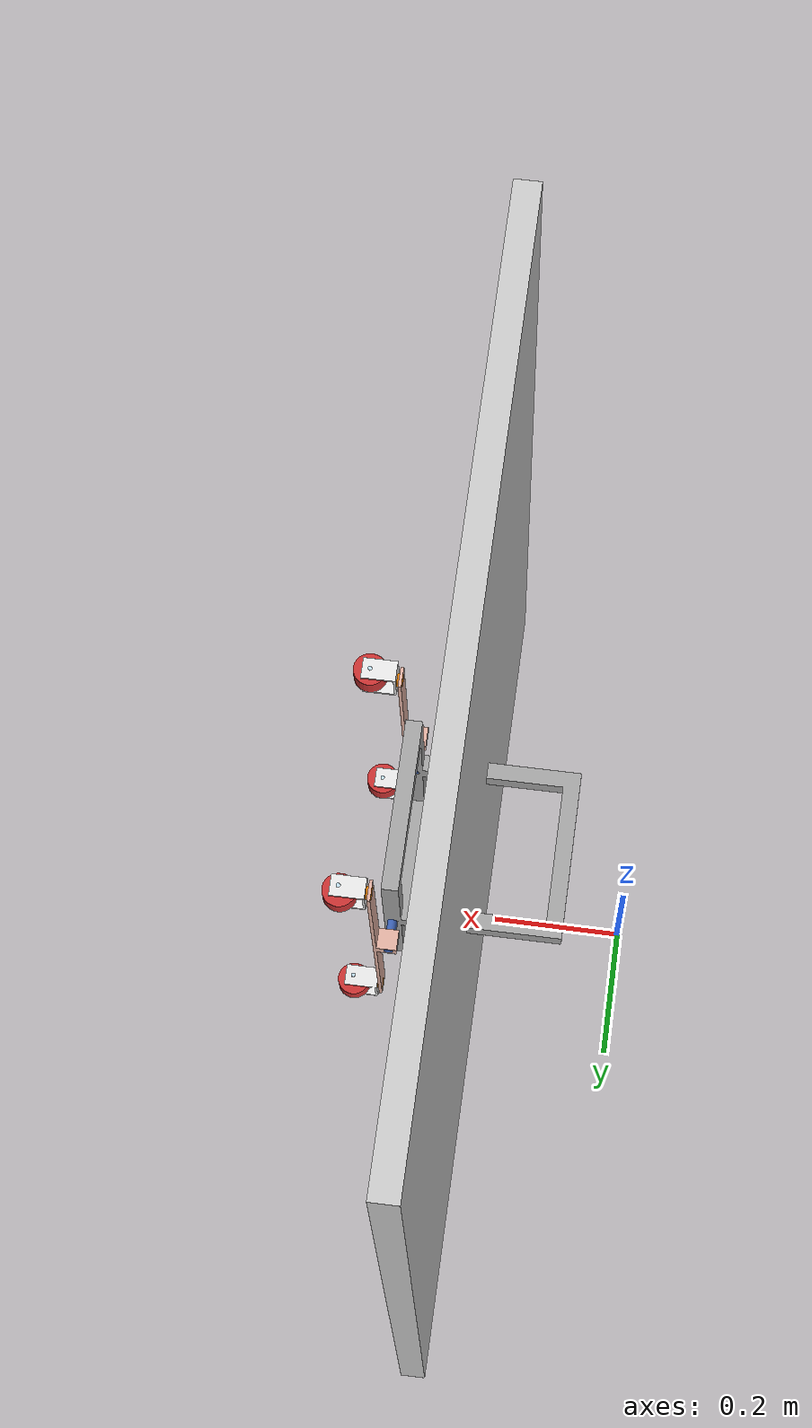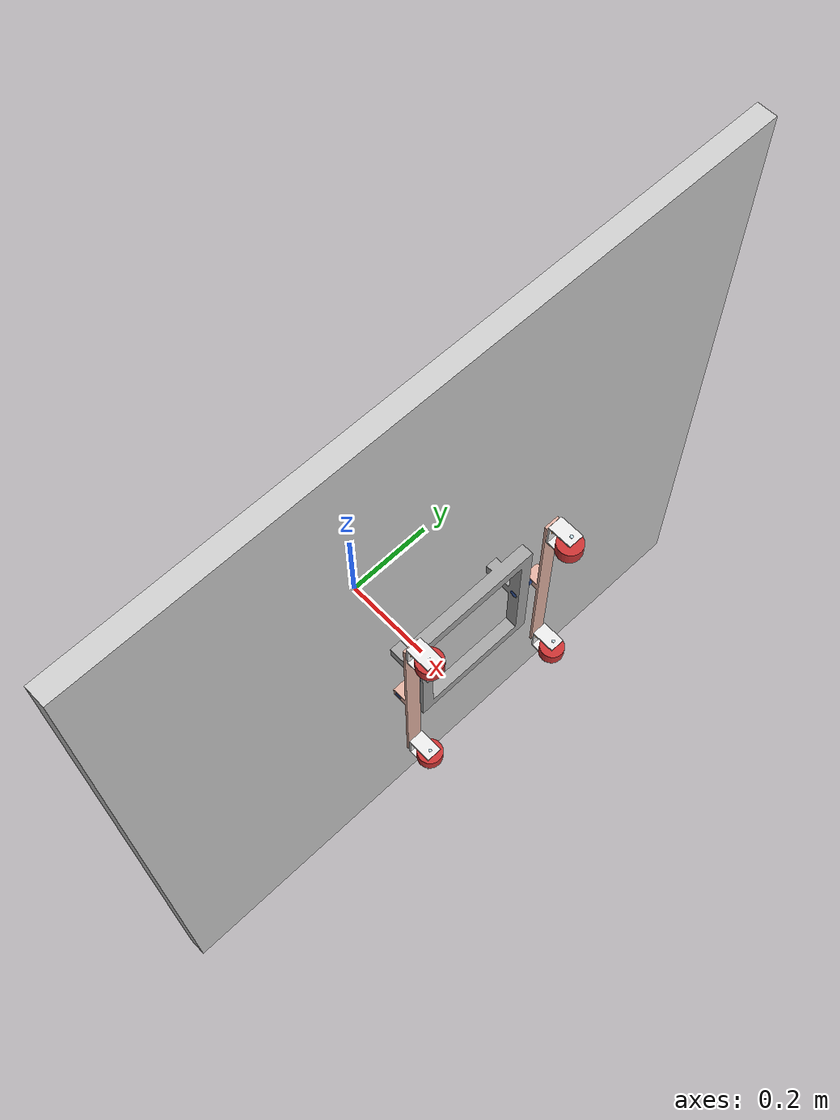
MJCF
<?xml version='1.0' encoding='utf-8'?>
<mujoco model="sally_mjcf">
  <compiler angle="radian" meshdir="assets" autolimits="true" />
  <option integrator="implicit" gravity="0 0 -9.81" cone="elliptic" impratio="10" noslip_iterations="15" />
  <default>
    <geom condim="6" contype="1" conaffinity="1" />
  </default>
  <compiler angle="radian" meshdir="assets" autolimits="true" />
  <default>

  </default>
  <worldbody>
    <body name="magnetic_wall" pos="0.25 0 0.35">
      <geom name="wall_geom" type="box" size="0.02 0.7 0.7" rgba="0.8 0.8 0.8 1" friction="0.95 0.1 0.1" contype="1" conaffinity="1" />
    </body>
    <light pos="0 0 2" dir="0 0 -1" directional="true" diffuse="0.8 0.8 0.8" />
    <body name="frame" pos="0.24 0 0.35" quat="0 -0.7071 0 0.7071">
      <freejoint />
      <geom mass="1.418814" type="mesh" pos="0.0180739 0.00440379 -0.0885384" quat="6.64008e-06 -7.24299e-06 1 -1.68313e-05" mesh="frame" material="frame_material" />
      <body name="frame_linkage" pos="0.0180761 -0.139947 -0.101144" quat="0.707094 -0.707118 -0.00101616 -0.00100588">
        <joint axis="0 0 1" name="right_hinge" type="hinge" stiffness="30.0" damping="1.0" />
        <geom mass="0.07" type="mesh" pos="-3.46945e-18 0 0.0365" quat="0.707107 0.707107 0 1.5761e-19" mesh="frame_linkage" material="frame_linkage_material" />
        <geom mass="0.3" type="mesh" pos="-1.38778e-17 0.02276 -0.020625" quat="0.5 0.5 0.5 -0.5" mesh="rocker" material="rocker_material" />
        <body name="rocker_linkage" pos="-0.2166 0.018 -0.020625" quat="0.000000 0.000000 0.707107 0.707107">
          <joint axis="0 0 1" name="BR_pivot" type="hinge" stiffness="30.0" damping="1.0" />
          <geom mass="0.15" type="mesh" pos="-0.00559823 0.000140783 0.05862" quat="3.31439e-16 0.698162 -0.71594 -6.15131e-17" mesh="wheel_holder" material="wheel_holder_material" />
          <geom mass="0.07" type="mesh" pos="-2.77556e-17 5.55112e-17 0.011" quat="9.09876e-17 -0.698162 0.71594 5.21112e-16" mesh="rocker_linkage" material="rocker_linkage_material" />
          <body name="wheel_linkage" pos="-0.0309912 0.000739345 0.04662" quat="0.184652 0.677713 -0.201753 -0.682571">
            <joint axis="0 0 1" name="BR_wheel" damping="0.1" />
            <geom mass="0.08" type="mesh" pos="0 0 0" quat="0.707107 0.707107 0 -4.01208e-18" mesh="wheel_linkage" material="wheel_linkage_material" />
            <body name="BR_wheel_geom" pos="0 0 -0.0165">
              <geom name="BR_cyl" type="cylinder" size="0.025 0.013" rgba="0.8 0.2 0.2 1" contype="1" conaffinity="1" friction="0.95 0.01 0.01" />
              <geom type="sphere" size="0.002" pos="0.022000 0.000000 0.010500" rgba="0 0 1 1" contype="0" conaffinity="0" friction="0.1 0.1 0.1" mass="1e-6" />
              <geom type="sphere" size="0.002" pos="0.015556 0.015556 0.010500" rgba="0 0 1 1" contype="0" conaffinity="0" friction="0.1 0.1 0.1" mass="1e-6" />
              <geom type="sphere" size="0.002" pos="0.000000 0.022000 0.010500" rgba="0 0 1 1" contype="0" conaffinity="0" friction="0.1 0.1 0.1" mass="1e-6" />
              <geom type="sphere" size="0.002" pos="-0.015556 0.015556 0.010500" rgba="0 0 1 1" contype="0" conaffinity="0" friction="0.1 0.1 0.1" mass="1e-6" />
              <geom type="sphere" size="0.002" pos="-0.022000 0.000000 0.010500" rgba="0 0 1 1" contype="0" conaffinity="0" friction="0.1 0.1 0.1" mass="1e-6" />
              <geom type="sphere" size="0.002" pos="-0.015556 -0.015556 0.010500" rgba="0 0 1 1" contype="0" conaffinity="0" friction="0.1 0.1 0.1" mass="1e-6" />
              <geom type="sphere" size="0.002" pos="-0.000000 -0.022000 0.010500" rgba="0 0 1 1" contype="0" conaffinity="0" friction="0.1 0.1 0.1" mass="1e-6" />
              <geom type="sphere" size="0.002" pos="0.015556 -0.015556 0.010500" rgba="0 0 1 1" contype="0" conaffinity="0" friction="0.1 0.1 0.1" mass="1e-6" />
              <geom type="sphere" size="0.002" pos="0.022000 0.000000 0.000000" rgba="0 0 1 1" contype="0" conaffinity="0" friction="0.1 0.1 0.1" mass="1e-6" />
              <geom type="sphere" size="0.002" pos="0.015556 0.015556 0.000000" rgba="0 0 1 1" contype="0" conaffinity="0" friction="0.1 0.1 0.1" mass="1e-6" />
              <geom type="sphere" size="0.002" pos="0.000000 0.022000 0.000000" rgba="0 0 1 1" contype="0" conaffinity="0" friction="0.1 0.1 0.1" mass="1e-6" />
              <geom type="sphere" size="0.002" pos="-0.015556 0.015556 0.000000" rgba="0 0 1 1" contype="0" conaffinity="0" friction="0.1 0.1 0.1" mass="1e-6" />
              <geom type="sphere" size="0.002" pos="-0.022000 0.000000 0.000000" rgba="0 0 1 1" contype="0" conaffinity="0" friction="0.1 0.1 0.1" mass="1e-6" />
              <geom type="sphere" size="0.002" pos="-0.015556 -0.015556 0.000000" rgba="0 0 1 1" contype="0" conaffinity="0" friction="0.1 0.1 0.1" mass="1e-6" />
              <geom type="sphere" size="0.002" pos="-0.000000 -0.022000 0.000000" rgba="0 0 1 1" contype="0" conaffinity="0" friction="0.1 0.1 0.1" mass="1e-6" />
              <geom type="sphere" size="0.002" pos="0.015556 -0.015556 0.000000" rgba="0 0 1 1" contype="0" conaffinity="0" friction="0.1 0.1 0.1" mass="1e-6" />
              <geom type="sphere" size="0.002" pos="0.022000 0.000000 -0.010500" rgba="0 0 1 1" contype="0" conaffinity="0" friction="0.1 0.1 0.1" mass="1e-6" />
              <geom type="sphere" size="0.002" pos="0.015556 0.015556 -0.010500" rgba="0 0 1 1" contype="0" conaffinity="0" friction="0.1 0.1 0.1" mass="1e-6" />
              <geom type="sphere" size="0.002" pos="0.000000 0.022000 -0.010500" rgba="0 0 1 1" contype="0" conaffinity="0" friction="0.1 0.1 0.1" mass="1e-6" />
              <geom type="sphere" size="0.002" pos="-0.015556 0.015556 -0.010500" rgba="0 0 1 1" contype="0" conaffinity="0" friction="0.1 0.1 0.1" mass="1e-6" />
              <geom type="sphere" size="0.002" pos="-0.022000 0.000000 -0.010500" rgba="0 0 1 1" contype="0" conaffinity="0" friction="0.1 0.1 0.1" mass="1e-6" />
              <geom type="sphere" size="0.002" pos="-0.015556 -0.015556 -0.010500" rgba="0 0 1 1" contype="0" conaffinity="0" friction="0.1 0.1 0.1" mass="1e-6" />
              <geom type="sphere" size="0.002" pos="-0.000000 -0.022000 -0.010500" rgba="0 0 1 1" contype="0" conaffinity="0" friction="0.1 0.1 0.1" mass="1e-6" />
              <geom type="sphere" size="0.002" pos="0.015556 -0.015556 -0.010500" rgba="0 0 1 1" contype="0" conaffinity="0" friction="0.1 0.1 0.1" mass="1e-6" />
            </body>
          </body>
        </body>
        <body name="rocker_linkage_2" pos="0.2166 0.018 -0.020625" quat="0.000000 0.000000 0.707107 0.707107">
          <joint axis="0 0 1" name="FR_pivot" type="hinge" stiffness="30.0" damping="1.0" />
          <geom mass="0.07" type="mesh" pos="2.77556e-17 0 0.011" quat="2.86822e-16 -0.693382 0.72057 1.85896e-16" mesh="rocker_linkage" material="rocker_linkage_material" />
          <geom mass="0.15" type="mesh" pos="-0.00559586 0.000215279 0.05862" quat="2.86822e-16 -0.693382 0.72057 1.85896e-16" mesh="wheel_holder" material="wheel_holder_material" />
          <body name="wheel_linkage_2" pos="-0.0309786 0.00115175 0.04662" quat="0.333211 0.610404 -0.356941 -0.623675">
            <joint axis="0 0 1" name="FR_wheel" damping="0.1" />
            <geom mass="0.08" type="mesh" pos="2.77556e-17 0 0" quat="0.707107 0.707107 0 1.2503e-17" mesh="wheel_linkage" material="wheel_linkage_material" />
            <body name="FR_wheel_geom" pos="0 0 -0.0165">
              <geom name="FR_cyl" type="cylinder" size="0.025 0.013" rgba="0.8 0.2 0.2 1" contype="1" conaffinity="1" friction="0.95 0.01 0.01" />
              <geom type="sphere" size="0.002" pos="0.022000 0.000000 0.010500" rgba="0 0 1 1" contype="0" conaffinity="0" friction="0.1 0.1 0.1" mass="1e-6" />
              <geom type="sphere" size="0.002" pos="0.015556 0.015556 0.010500" rgba="0 0 1 1" contype="0" conaffinity="0" friction="0.1 0.1 0.1" mass="1e-6" />
              <geom type="sphere" size="0.002" pos="0.000000 0.022000 0.010500" rgba="0 0 1 1" contype="0" conaffinity="0" friction="0.1 0.1 0.1" mass="1e-6" />
              <geom type="sphere" size="0.002" pos="-0.015556 0.015556 0.010500" rgba="0 0 1 1" contype="0" conaffinity="0" friction="0.1 0.1 0.1" mass="1e-6" />
              <geom type="sphere" size="0.002" pos="-0.022000 0.000000 0.010500" rgba="0 0 1 1" contype="0" conaffinity="0" friction="0.1 0.1 0.1" mass="1e-6" />
              <geom type="sphere" size="0.002" pos="-0.015556 -0.015556 0.010500" rgba="0 0 1 1" contype="0" conaffinity="0" friction="0.1 0.1 0.1" mass="1e-6" />
              <geom type="sphere" size="0.002" pos="-0.000000 -0.022000 0.010500" rgba="0 0 1 1" contype="0" conaffinity="0" friction="0.1 0.1 0.1" mass="1e-6" />
              <geom type="sphere" size="0.002" pos="0.015556 -0.015556 0.010500" rgba="0 0 1 1" contype="0" conaffinity="0" friction="0.1 0.1 0.1" mass="1e-6" />
              <geom type="sphere" size="0.002" pos="0.022000 0.000000 0.000000" rgba="0 0 1 1" contype="0" conaffinity="0" friction="0.1 0.1 0.1" mass="1e-6" />
              <geom type="sphere" size="0.002" pos="0.015556 0.015556 0.000000" rgba="0 0 1 1" contype="0" conaffinity="0" friction="0.1 0.1 0.1" mass="1e-6" />
              <geom type="sphere" size="0.002" pos="0.000000 0.022000 0.000000" rgba="0 0 1 1" contype="0" conaffinity="0" friction="0.1 0.1 0.1" mass="1e-6" />
              <geom type="sphere" size="0.002" pos="-0.015556 0.015556 0.000000" rgba="0 0 1 1" contype="0" conaffinity="0" friction="0.1 0.1 0.1" mass="1e-6" />
              <geom type="sphere" size="0.002" pos="-0.022000 0.000000 0.000000" rgba="0 0 1 1" contype="0" conaffinity="0" friction="0.1 0.1 0.1" mass="1e-6" />
              <geom type="sphere" size="0.002" pos="-0.015556 -0.015556 0.000000" rgba="0 0 1 1" contype="0" conaffinity="0" friction="0.1 0.1 0.1" mass="1e-6" />
              <geom type="sphere" size="0.002" pos="-0.000000 -0.022000 0.000000" rgba="0 0 1 1" contype="0" conaffinity="0" friction="0.1 0.1 0.1" mass="1e-6" />
              <geom type="sphere" size="0.002" pos="0.015556 -0.015556 0.000000" rgba="0 0 1 1" contype="0" conaffinity="0" friction="0.1 0.1 0.1" mass="1e-6" />
              <geom type="sphere" size="0.002" pos="0.022000 0.000000 -0.010500" rgba="0 0 1 1" contype="0" conaffinity="0" friction="0.1 0.1 0.1" mass="1e-6" />
              <geom type="sphere" size="0.002" pos="0.015556 0.015556 -0.010500" rgba="0 0 1 1" contype="0" conaffinity="0" friction="0.1 0.1 0.1" mass="1e-6" />
              <geom type="sphere" size="0.002" pos="0.000000 0.022000 -0.010500" rgba="0 0 1 1" contype="0" conaffinity="0" friction="0.1 0.1 0.1" mass="1e-6" />
              <geom type="sphere" size="0.002" pos="-0.015556 0.015556 -0.010500" rgba="0 0 1 1" contype="0" conaffinity="0" friction="0.1 0.1 0.1" mass="1e-6" />
              <geom type="sphere" size="0.002" pos="-0.022000 0.000000 -0.010500" rgba="0 0 1 1" contype="0" conaffinity="0" friction="0.1 0.1 0.1" mass="1e-6" />
              <geom type="sphere" size="0.002" pos="-0.015556 -0.015556 -0.010500" rgba="0 0 1 1" contype="0" conaffinity="0" friction="0.1 0.1 0.1" mass="1e-6" />
              <geom type="sphere" size="0.002" pos="-0.000000 -0.022000 -0.010500" rgba="0 0 1 1" contype="0" conaffinity="0" friction="0.1 0.1 0.1" mass="1e-6" />
              <geom type="sphere" size="0.002" pos="0.015556 -0.015556 -0.010500" rgba="0 0 1 1" contype="0" conaffinity="0" friction="0.1 0.1 0.1" mass="1e-6" />
            </body>
          </body>
        </body>
      </body>
      <body name="frame_linkage_2" pos="0.0180719 0.148853 -0.101153" quat="0.498231 -0.498241 -0.50177 -0.501746">
        <joint axis="0 0 1" name="left_hinge" type="hinge" stiffness="30.0" damping="1.0" />
        <geom mass="0.07" type="mesh" pos="1.38778e-17 0 0.0365" quat="0.707107 0.707107 0 -4.24203e-19" mesh="frame_linkage" material="frame_linkage_material" />
        <geom mass="0.3" type="mesh" pos="-0.02276 -1.04083e-17 0.020625" quat="0.707107 1.4179e-17 0.707107 -2.23058e-16" mesh="rocker" material="rocker_material" />
        <body name="rocker_linkage_3" pos="-0.018 -0.2166 0.020625" quat="-0.500000 -0.500000 0.500000 0.500000">
          <joint axis="0 0 1" name="BL_pivot" type="hinge" stiffness="30.0" damping="1.0" />
          <geom mass="0.07" type="mesh" pos="0 0 0.011" quat="1.07501e-18 -0.707107 0.707107 -2.09885e-17" mesh="rocker_linkage" material="rocker_linkage_material" />
          <geom mass="0.15" type="mesh" pos="0.0056 0 0.05862" quat="1.17978e-18 -0.707107 -0.707107 2.0055e-17" mesh="wheel_holder" material="wheel_holder_material" />
          <body name="wheel_linkage_3" pos="0.031 4e-05 0.04662" quat="0.505916 -0.494014 0.505916 -0.494014">
            <joint axis="0 0 1" name="BL_wheel" damping="0.1" />
            <geom mass="0.08" type="mesh" pos="2.77556e-17 -2.77556e-17 -0.052" quat="0.707107 -0.707107 0 -2.35867e-18" mesh="wheel_linkage" material="wheel_linkage_material" />
            <body name="BL_wheel_geom" pos="0 0 -0.0165">
              <geom name="BL_cyl" type="cylinder" size="0.025 0.013" rgba="0.8 0.2 0.2 1" contype="1" conaffinity="1" friction="0.95 0.01 0.01" />
              <geom type="sphere" size="0.002" pos="0.022000 0.000000 0.010500" rgba="0 0 1 1" contype="0" conaffinity="0" friction="0.1 0.1 0.1" mass="1e-6" />
              <geom type="sphere" size="0.002" pos="0.015556 0.015556 0.010500" rgba="0 0 1 1" contype="0" conaffinity="0" friction="0.1 0.1 0.1" mass="1e-6" />
              <geom type="sphere" size="0.002" pos="0.000000 0.022000 0.010500" rgba="0 0 1 1" contype="0" conaffinity="0" friction="0.1 0.1 0.1" mass="1e-6" />
              <geom type="sphere" size="0.002" pos="-0.015556 0.015556 0.010500" rgba="0 0 1 1" contype="0" conaffinity="0" friction="0.1 0.1 0.1" mass="1e-6" />
              <geom type="sphere" size="0.002" pos="-0.022000 0.000000 0.010500" rgba="0 0 1 1" contype="0" conaffinity="0" friction="0.1 0.1 0.1" mass="1e-6" />
              <geom type="sphere" size="0.002" pos="-0.015556 -0.015556 0.010500" rgba="0 0 1 1" contype="0" conaffinity="0" friction="0.1 0.1 0.1" mass="1e-6" />
              <geom type="sphere" size="0.002" pos="-0.000000 -0.022000 0.010500" rgba="0 0 1 1" contype="0" conaffinity="0" friction="0.1 0.1 0.1" mass="1e-6" />
              <geom type="sphere" size="0.002" pos="0.015556 -0.015556 0.010500" rgba="0 0 1 1" contype="0" conaffinity="0" friction="0.1 0.1 0.1" mass="1e-6" />
              <geom type="sphere" size="0.002" pos="0.022000 0.000000 0.000000" rgba="0 0 1 1" contype="0" conaffinity="0" friction="0.1 0.1 0.1" mass="1e-6" />
              <geom type="sphere" size="0.002" pos="0.015556 0.015556 0.000000" rgba="0 0 1 1" contype="0" conaffinity="0" friction="0.1 0.1 0.1" mass="1e-6" />
              <geom type="sphere" size="0.002" pos="0.000000 0.022000 0.000000" rgba="0 0 1 1" contype="0" conaffinity="0" friction="0.1 0.1 0.1" mass="1e-6" />
              <geom type="sphere" size="0.002" pos="-0.015556 0.015556 0.000000" rgba="0 0 1 1" contype="0" conaffinity="0" friction="0.1 0.1 0.1" mass="1e-6" />
              <geom type="sphere" size="0.002" pos="-0.022000 0.000000 0.000000" rgba="0 0 1 1" contype="0" conaffinity="0" friction="0.1 0.1 0.1" mass="1e-6" />
              <geom type="sphere" size="0.002" pos="-0.015556 -0.015556 0.000000" rgba="0 0 1 1" contype="0" conaffinity="0" friction="0.1 0.1 0.1" mass="1e-6" />
              <geom type="sphere" size="0.002" pos="-0.000000 -0.022000 0.000000" rgba="0 0 1 1" contype="0" conaffinity="0" friction="0.1 0.1 0.1" mass="1e-6" />
              <geom type="sphere" size="0.002" pos="0.015556 -0.015556 0.000000" rgba="0 0 1 1" contype="0" conaffinity="0" friction="0.1 0.1 0.1" mass="1e-6" />
              <geom type="sphere" size="0.002" pos="0.022000 0.000000 -0.010500" rgba="0 0 1 1" contype="0" conaffinity="0" friction="0.1 0.1 0.1" mass="1e-6" />
              <geom type="sphere" size="0.002" pos="0.015556 0.015556 -0.010500" rgba="0 0 1 1" contype="0" conaffinity="0" friction="0.1 0.1 0.1" mass="1e-6" />
              <geom type="sphere" size="0.002" pos="0.000000 0.022000 -0.010500" rgba="0 0 1 1" contype="0" conaffinity="0" friction="0.1 0.1 0.1" mass="1e-6" />
              <geom type="sphere" size="0.002" pos="-0.015556 0.015556 -0.010500" rgba="0 0 1 1" contype="0" conaffinity="0" friction="0.1 0.1 0.1" mass="1e-6" />
              <geom type="sphere" size="0.002" pos="-0.022000 0.000000 -0.010500" rgba="0 0 1 1" contype="0" conaffinity="0" friction="0.1 0.1 0.1" mass="1e-6" />
              <geom type="sphere" size="0.002" pos="-0.015556 -0.015556 -0.010500" rgba="0 0 1 1" contype="0" conaffinity="0" friction="0.1 0.1 0.1" mass="1e-6" />
              <geom type="sphere" size="0.002" pos="-0.000000 -0.022000 -0.010500" rgba="0 0 1 1" contype="0" conaffinity="0" friction="0.1 0.1 0.1" mass="1e-6" />
              <geom type="sphere" size="0.002" pos="0.015556 -0.015556 -0.010500" rgba="0 0 1 1" contype="0" conaffinity="0" friction="0.1 0.1 0.1" mass="1e-6" />
            </body>
          </body>
        </body>
        <body name="rocker_linkage_4" pos="-0.018 0.2166 0.020625" quat="-0.500000 -0.500000 0.500000 0.500000">
          <joint axis="0 0 1" name="FL_pivot" type="hinge" stiffness="30.0" damping="1.0" />
          <geom mass="0.07" type="mesh" pos="-1.38778e-16 -2.77556e-17 0.011" quat="3.71573e-18 -0.703399 0.710795 -1.77453e-17" mesh="rocker_linkage" material="rocker_linkage_material" />
          <geom mass="0.15" type="mesh" pos="0.00559969 -5.85778e-05 0.05862" quat="1.10843e-18 -0.710795 -0.703399 1.52529e-17" mesh="wheel_holder" material="wheel_holder_material" />
          <body name="wheel_linkage_4" pos="0.0309987 -0.000284272 0.04662" quat="0.491361 0.503325 -0.496653 -0.508493">
            <joint axis="0 0 1" name="FL_wheel" damping="0.1" />
            <geom mass="0.08" type="mesh" pos="0 0 0.052" quat="0.707107 0.707107 -0 -1.17884e-18" mesh="wheel_linkage" material="wheel_linkage_material" />
            <body name="FL_wheel_geom" pos="0 0 0.0165">
              <geom name="FL_cyl" type="cylinder" size="0.025 0.013" rgba="0.8 0.2 0.2 1" contype="1" conaffinity="1" friction="0.95 0.01 0.01" />
              <geom type="sphere" size="0.002" pos="0.022000 0.000000 0.010500" rgba="0 0 1 1" contype="0" conaffinity="0" friction="0.1 0.1 0.1" mass="1e-6" />
              <geom type="sphere" size="0.002" pos="0.015556 0.015556 0.010500" rgba="0 0 1 1" contype="0" conaffinity="0" friction="0.1 0.1 0.1" mass="1e-6" />
              <geom type="sphere" size="0.002" pos="0.000000 0.022000 0.010500" rgba="0 0 1 1" contype="0" conaffinity="0" friction="0.1 0.1 0.1" mass="1e-6" />
              <geom type="sphere" size="0.002" pos="-0.015556 0.015556 0.010500" rgba="0 0 1 1" contype="0" conaffinity="0" friction="0.1 0.1 0.1" mass="1e-6" />
              <geom type="sphere" size="0.002" pos="-0.022000 0.000000 0.010500" rgba="0 0 1 1" contype="0" conaffinity="0" friction="0.1 0.1 0.1" mass="1e-6" />
              <geom type="sphere" size="0.002" pos="-0.015556 -0.015556 0.010500" rgba="0 0 1 1" contype="0" conaffinity="0" friction="0.1 0.1 0.1" mass="1e-6" />
              <geom type="sphere" size="0.002" pos="-0.000000 -0.022000 0.010500" rgba="0 0 1 1" contype="0" conaffinity="0" friction="0.1 0.1 0.1" mass="1e-6" />
              <geom type="sphere" size="0.002" pos="0.015556 -0.015556 0.010500" rgba="0 0 1 1" contype="0" conaffinity="0" friction="0.1 0.1 0.1" mass="1e-6" />
              <geom type="sphere" size="0.002" pos="0.022000 0.000000 0.000000" rgba="0 0 1 1" contype="0" conaffinity="0" friction="0.1 0.1 0.1" mass="1e-6" />
              <geom type="sphere" size="0.002" pos="0.015556 0.015556 0.000000" rgba="0 0 1 1" contype="0" conaffinity="0" friction="0.1 0.1 0.1" mass="1e-6" />
              <geom type="sphere" size="0.002" pos="0.000000 0.022000 0.000000" rgba="0 0 1 1" contype="0" conaffinity="0" friction="0.1 0.1 0.1" mass="1e-6" />
              <geom type="sphere" size="0.002" pos="-0.015556 0.015556 0.000000" rgba="0 0 1 1" contype="0" conaffinity="0" friction="0.1 0.1 0.1" mass="1e-6" />
              <geom type="sphere" size="0.002" pos="-0.022000 0.000000 0.000000" rgba="0 0 1 1" contype="0" conaffinity="0" friction="0.1 0.1 0.1" mass="1e-6" />
              <geom type="sphere" size="0.002" pos="-0.015556 -0.015556 0.000000" rgba="0 0 1 1" contype="0" conaffinity="0" friction="0.1 0.1 0.1" mass="1e-6" />
              <geom type="sphere" size="0.002" pos="-0.000000 -0.022000 0.000000" rgba="0 0 1 1" contype="0" conaffinity="0" friction="0.1 0.1 0.1" mass="1e-6" />
              <geom type="sphere" size="0.002" pos="0.015556 -0.015556 0.000000" rgba="0 0 1 1" contype="0" conaffinity="0" friction="0.1 0.1 0.1" mass="1e-6" />
              <geom type="sphere" size="0.002" pos="0.022000 0.000000 -0.010500" rgba="0 0 1 1" contype="0" conaffinity="0" friction="0.1 0.1 0.1" mass="1e-6" />
              <geom type="sphere" size="0.002" pos="0.015556 0.015556 -0.010500" rgba="0 0 1 1" contype="0" conaffinity="0" friction="0.1 0.1 0.1" mass="1e-6" />
              <geom type="sphere" size="0.002" pos="0.000000 0.022000 -0.010500" rgba="0 0 1 1" contype="0" conaffinity="0" friction="0.1 0.1 0.1" mass="1e-6" />
              <geom type="sphere" size="0.002" pos="-0.015556 0.015556 -0.010500" rgba="0 0 1 1" contype="0" conaffinity="0" friction="0.1 0.1 0.1" mass="1e-6" />
              <geom type="sphere" size="0.002" pos="-0.022000 0.000000 -0.010500" rgba="0 0 1 1" contype="0" conaffinity="0" friction="0.1 0.1 0.1" mass="1e-6" />
              <geom type="sphere" size="0.002" pos="-0.015556 -0.015556 -0.010500" rgba="0 0 1 1" contype="0" conaffinity="0" friction="0.1 0.1 0.1" mass="1e-6" />
              <geom type="sphere" size="0.002" pos="-0.000000 -0.022000 -0.010500" rgba="0 0 1 1" contype="0" conaffinity="0" friction="0.1 0.1 0.1" mass="1e-6" />
              <geom type="sphere" size="0.002" pos="0.015556 -0.015556 -0.010500" rgba="0 0 1 1" contype="0" conaffinity="0" friction="0.1 0.1 0.1" mass="1e-6" />
            </body>
          </body>
        </body>
      </body>
    </body>
  </worldbody>
  <asset>
    <mesh file="frame_linkage.stl" />
    <mesh file="rocker.stl" />
    <mesh file="frame.stl" />
    <mesh file="wheel.stl" />
    <mesh file="rocker_linkage.stl" />
    <mesh file="wheel_holder.stl" />
    <mesh file="wheel_linkage.stl" />
    <material name="frame_material" rgba="0.647059 0.647059 0.647059 1" />
    <material name="frame_linkage_material" rgba="0.231373 0.380392 0.705882 1" />
    <material name="rocker_material" rgba="0.890196 0.698039 0.639216 1" />
    <material name="wheel_holder_material" rgba="0.917647 0.917647 0.917647 1" />
    <material name="rocker_linkage_material" rgba="0.972549 0.529412 0.00392157 1" />
    <material name="wheel_linkage_material" rgba="0.768627 0.886275 0.952941 1" />
    <material name="wheel_material" rgba="0.498039 0.498039 0.498039 1" />
  </asset>
  <actuator>
    <position name="BR_pivot" joint="BR_pivot" kp="20" kv="10" />
    <position name="FR_pivot" joint="FR_pivot" kp="20" kv="10" />
    <position name="BL_pivot" joint="BL_pivot" kp="20" kv="10" />
    <position name="FL_pivot" joint="FL_pivot" kp="20" kv="10" />
    <!-- Position control for wheels (control input = target angle in radians) -->
    <position name="BR_wheel_motor" joint="BR_wheel" kp="10" kv="1" ctrlrange="-100 100" />
    <position name="FR_wheel_motor" joint="FR_wheel" kp="10" kv="1" ctrlrange="-100 100" />
    <position name="BL_wheel_motor" joint="BL_wheel" kp="10" kv="1" ctrlrange="-100 100" />
    <position name="FL_wheel_motor" joint="FL_wheel" kp="10" kv="1" ctrlrange="-100 100" />
  </actuator>
</mujoco>
